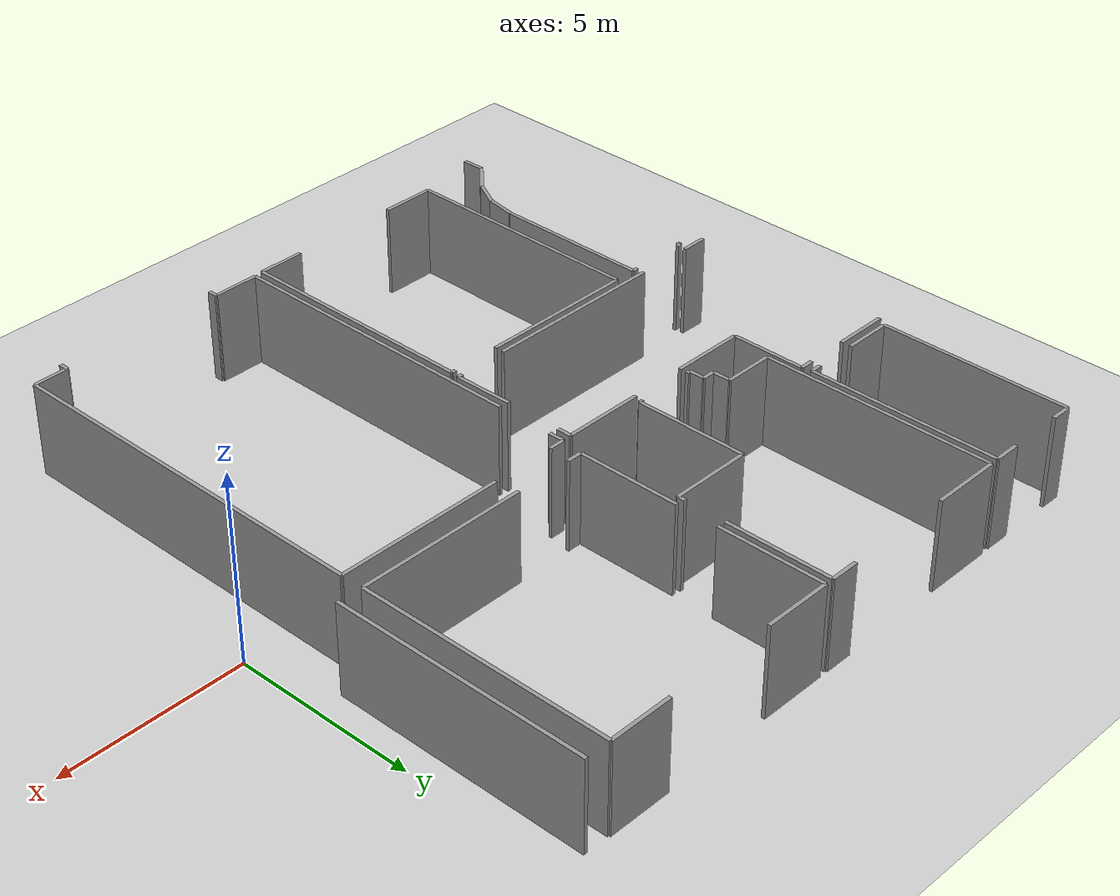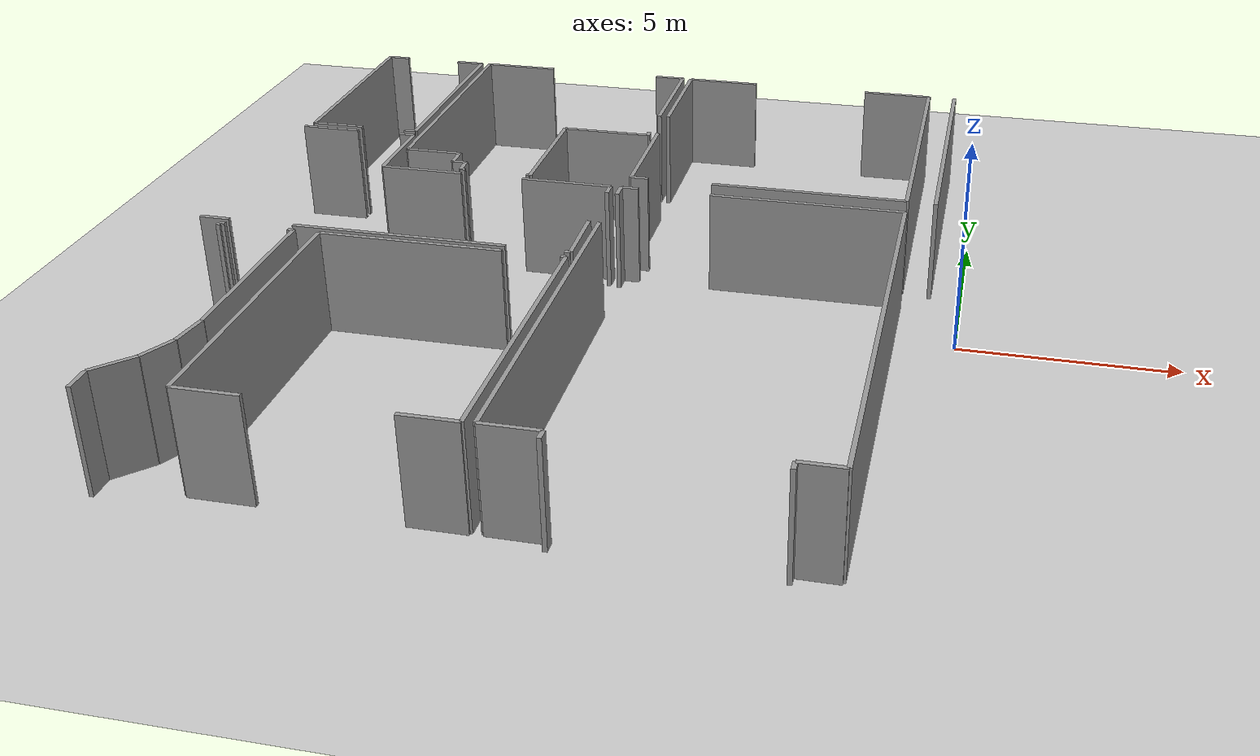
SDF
<sdf version="1.6">
 <world name="default">
  <model name="ground_plane">
   <static>1</static>
   <link name="link">
    <collision name="collision">
     <geometry><plane><normal>0 0 1</normal><size>100 100</size></plane></geometry>
     <surface><friction><ode><mu>100</mu><mu2>50</mu2></ode></friction></surface>
    </collision>
    <visual name="visual">
     <cast_shadows>0</cast_shadows>
     <geometry><plane><normal>0 0 1</normal><size>100 100</size></plane></geometry>
     <material>
      <script><uri>file://media/materials/scripts/gazebo.material</uri><name>Gazebo/Grey</name></script>
     </material>
    </visual>
   </link>
  </model>
  <model name="0510034870_A-40">
   <static>1</static>
   <link name="Wall_57">
    <collision name="Wall_57_Collision">
     <geometry><box><size>0.109804319816 0.1 2.5</size></box></geometry>
     <pose>0.0549021599081 0 1.25 0 0 0</pose>
    </collision>
    <visual name="Wall_57_Visual">
     <pose>0.0549021599081 0 1.25 0 0 0</pose>
     <geometry><box><size>0.109804319816 0.1 2.5</size></box></geometry>
     <material>
      <script><uri>file://media/materials/scripts/gazebo.material</uri><name>Gazebo/Grey</name></script>
      <ambient>1 1 1 1</ambient>
     </material>
    </visual>
    <pose>16.9833643282 -11.4414831834 0 0 0 1.57079632679</pose>
   </link>
   <link name="Wall_58">
    <collision name="Wall_58_Collision">
     <geometry><box><size>0.131765183779 0.1 2.5</size></box></geometry>
     <pose>0.0658825918897 0 1.25 0 0 0</pose>
    </collision>
    <visual name="Wall_58_Visual">
     <pose>0.0658825918897 0 1.25 0 0 0</pose>
     <geometry><box><size>0.131765183779 0.1 2.5</size></box></geometry>
     <material>
      <script><uri>file://media/materials/scripts/gazebo.material</uri><name>Gazebo/Grey</name></script>
      <ambient>1 1 1 1</ambient>
     </material>
    </visual>
    <pose>16.9833643282 -11.3316788636 0 0 0 0.0</pose>
   </link>
   <link name="Wall_59">
    <collision name="Wall_59_Collision">
     <geometry><box><size>0.14522097326 0.1 2.5</size></box></geometry>
     <pose>0.0726104866299 0 1.25 0 0 0</pose>
    </collision>
    <visual name="Wall_59_Visual">
     <pose>0.0726104866299 0 1.25 0 0 0</pose>
     <geometry><box><size>0.14522097326 0.1 2.5</size></box></geometry>
     <material>
      <script><uri>file://media/materials/scripts/gazebo.material</uri><name>Gazebo/Grey</name></script>
      <ambient>1 1 1 1</ambient>
     </material>
    </visual>
    <pose>18.6419807938 -11.3316788636 0 0 0 0.0</pose>
   </link>
   <link name="Wall_60">
    <collision name="Wall_60_Collision">
     <geometry><box><size>4.24771346785 0.1 2.5</size></box></geometry>
     <pose>2.12385673392 0 1.25 0 0 0</pose>
    </collision>
    <visual name="Wall_60_Visual">
     <pose>2.12385673392 0 1.25 0 0 0</pose>
     <geometry><box><size>4.24771346785 0.1 2.5</size></box></geometry>
     <material>
      <script><uri>file://media/materials/scripts/gazebo.material</uri><name>Gazebo/Grey</name></script>
      <ambient>1 1 1 1</ambient>
     </material>
    </visual>
    <pose>18.787201767 -11.3316788636 0 0 0 -1.57079632679</pose>
   </link>
   <link name="Wall_61">
    <collision name="Wall_61_Collision">
     <geometry><box><size>0.838932116164 0.1 2.5</size></box></geometry>
     <pose>0.419466058082 0 1.25 0 0 0</pose>
    </collision>
    <visual name="Wall_61_Visual">
     <pose>0.419466058082 0 1.25 0 0 0</pose>
     <geometry><box><size>0.838932116164 0.1 2.5</size></box></geometry>
     <material>
      <script><uri>file://media/materials/scripts/gazebo.material</uri><name>Gazebo/Grey</name></script>
      <ambient>1 1 1 1</ambient>
     </material>
    </visual>
    <pose>18.787201767 -15.5793923315 0 0 0 -1.72636770612</pose>
   </link>
   <link name="Wall_62">
    <collision name="Wall_62_Collision">
     <geometry><box><size>0.819879496161 0.1 2.5</size></box></geometry>
     <pose>0.409939748081 0 1.25 0 0 0</pose>
    </collision>
    <visual name="Wall_62_Visual">
     <pose>0.409939748081 0 1.25 0 0 0</pose>
     <geometry><box><size>0.819879496161 0.1 2.5</size></box></geometry>
     <material>
      <script><uri>file://media/materials/scripts/gazebo.material</uri><name>Gazebo/Grey</name></script>
      <ambient>1 1 1 1</ambient>
     </material>
    </visual>
    <pose>18.657213763 -16.4081927986 0 0 0 -2.0584038878</pose>
   </link>
   <link name="Wall_63">
    <collision name="Wall_63_Collision">
     <geometry><box><size>0.989534600481 0.1 2.5</size></box></geometry>
     <pose>0.494767300241 0 1.25 0 0 0</pose>
    </collision>
    <visual name="Wall_63_Visual">
     <pose>0.494767300241 0 1.25 0 0 0</pose>
     <geometry><box><size>0.989534600481 0.1 2.5</size></box></geometry>
     <material>
      <script><uri>file://media/materials/scripts/gazebo.material</uri><name>Gazebo/Grey</name></script>
      <ambient>1 1 1 1</ambient>
     </material>
    </visual>
    <pose>18.2730890557 -17.1325204852 0 0 0 -2.35220321966</pose>
   </link>
   <link name="Wall_64">
    <collision name="Wall_64_Collision">
     <geometry><box><size>0.602654528715 0.1 2.5</size></box></geometry>
     <pose>0.301327264357 0 1.25 0 0 0</pose>
    </collision>
    <visual name="Wall_64_Visual">
     <pose>0.301327264357 0 1.25 0 0 0</pose>
     <geometry><box><size>0.602654528715 0.1 2.5</size></box></geometry>
     <material>
      <script><uri>file://media/materials/scripts/gazebo.material</uri><name>Gazebo/Grey</name></script>
      <ambient>1 1 1 1</ambient>
     </material>
    </visual>
    <pose>17.5761807138 -17.8350142492 0 0 0 -1.55626185425</pose>
   </link>
   <link name="Wall_65">
    <collision name="Wall_65_Collision">
     <geometry><box><size>0.132526832241 0.1 2.5</size></box></geometry>
     <pose>0.0662634161203 0 1.25 0 0 0</pose>
    </collision>
    <visual name="Wall_65_Visual">
     <pose>0.0662634161203 0 1.25 0 0 0</pose>
     <geometry><box><size>0.132526832241 0.1 2.5</size></box></geometry>
     <material>
      <script><uri>file://media/materials/scripts/gazebo.material</uri><name>Gazebo/Grey</name></script>
      <ambient>1 1 1 1</ambient>
     </material>
    </visual>
    <pose>25.1962196848 -11.0975989032 0 0 0 3.14159265359</pose>
   </link>
   <link name="Wall_66">
    <collision name="Wall_66_Collision">
     <geometry><box><size>5.04884070757 0.1 2.5</size></box></geometry>
     <pose>2.52442035379 0 1.25 0 0 0</pose>
    </collision>
    <visual name="Wall_66_Visual">
     <pose>2.52442035379 0 1.25 0 0 0</pose>
     <geometry><box><size>5.04884070757 0.1 2.5</size></box></geometry>
     <material>
      <script><uri>file://media/materials/scripts/gazebo.material</uri><name>Gazebo/Grey</name></script>
      <ambient>1 1 1 1</ambient>
     </material>
    </visual>
    <pose>23.7084663574 -11.0975989032 0 0 0 3.14159265359</pose>
   </link>
   <link name="Wall_67">
    <collision name="Wall_67_Collision">
     <geometry><box><size>0.717599791816 0.1 2.5</size></box></geometry>
     <pose>0.358799895908 0 1.25 0 0 0</pose>
    </collision>
    <visual name="Wall_67_Visual">
     <pose>0.358799895908 0 1.25 0 0 0</pose>
     <geometry><box><size>0.717599791816 0.1 2.5</size></box></geometry>
     <material>
      <script><uri>file://media/materials/scripts/gazebo.material</uri><name>Gazebo/Grey</name></script>
      <ambient>1 1 1 1</ambient>
     </material>
    </visual>
    <pose>17.0998965428 -11.0975989032 0 0 0 3.14159265359</pose>
   </link>
   <link name="Wall_69">
    <collision name="Wall_69_Collision">
     <geometry><box><size>1.49041909707 0.1 2.5</size></box></geometry>
     <pose>0.745209548533 0 1.25 0 0 0</pose>
    </collision>
    <visual name="Wall_69_Visual">
     <pose>0.745209548533 0 1.25 0 0 0</pose>
     <geometry><box><size>1.49041909707 0.1 2.5</size></box></geometry>
     <material>
      <script><uri>file://media/materials/scripts/gazebo.material</uri><name>Gazebo/Grey</name></script>
      <ambient>1 1 1 1</ambient>
     </material>
    </visual>
    <pose>16.3822967509 -5.5087494367 0 0 0 0.0</pose>
   </link>
   <link name="Wall_70">
    <collision name="Wall_70_Collision">
     <geometry><box><size>0.367241499686 0.1 2.5</size></box></geometry>
     <pose>0.183620749843 0 1.25 0 0 0</pose>
    </collision>
    <visual name="Wall_70_Visual">
     <pose>0.183620749843 0 1.25 0 0 0</pose>
     <geometry><box><size>0.367241499686 0.1 2.5</size></box></geometry>
     <material>
      <script><uri>file://media/materials/scripts/gazebo.material</uri><name>Gazebo/Grey</name></script>
      <ambient>1 1 1 1</ambient>
     </material>
    </visual>
    <pose>19.0255977354 -5.5087494367 0 0 0 0.0</pose>
   </link>
   <link name="Wall_71">
    <collision name="Wall_71_Collision">
     <geometry><box><size>2.04096399307 0.1 2.5</size></box></geometry>
     <pose>1.02048199653 0 1.25 0 0 0</pose>
    </collision>
    <visual name="Wall_71_Visual">
     <pose>1.02048199653 0 1.25 0 0 0</pose>
     <geometry><box><size>2.04096399307 0.1 2.5</size></box></geometry>
     <material>
      <script><uri>file://media/materials/scripts/gazebo.material</uri><name>Gazebo/Grey</name></script>
      <ambient>1 1 1 1</ambient>
     </material>
    </visual>
    <pose>19.3928392351 -5.5087494367 0 0 0 -1.57079632679</pose>
   </link>
   <link name="Wall_72">
    <collision name="Wall_72_Collision">
     <geometry><box><size>2.0115135859 0.1 2.5</size></box></geometry>
     <pose>1.00575679295 0 1.25 0 0 0</pose>
    </collision>
    <visual name="Wall_72_Visual">
     <pose>1.00575679295 0 1.25 0 0 0</pose>
     <geometry><box><size>2.0115135859 0.1 2.5</size></box></geometry>
     <material>
      <script><uri>file://media/materials/scripts/gazebo.material</uri><name>Gazebo/Grey</name></script>
      <ambient>1 1 1 1</ambient>
     </material>
    </visual>
    <pose>19.3928392351 -7.54971342977 0 0 0 0.0</pose>
   </link>
   <link name="Wall_73">
    <collision name="Wall_73_Collision">
     <geometry><box><size>2.21360431093 0.1 2.5</size></box></geometry>
     <pose>1.10680215547 0 1.25 0 0 0</pose>
    </collision>
    <visual name="Wall_73_Visual">
     <pose>1.10680215547 0 1.25 0 0 0</pose>
     <geometry><box><size>2.21360431093 0.1 2.5</size></box></geometry>
     <material>
      <script><uri>file://media/materials/scripts/gazebo.material</uri><name>Gazebo/Grey</name></script>
      <ambient>1 1 1 1</ambient>
     </material>
    </visual>
    <pose>22.9532919081 -7.54971342977 0 0 0 0.0</pose>
   </link>
   <link name="Wall_74">
    <collision name="Wall_74_Collision">
     <geometry><box><size>0.375873515579 0.1 2.5</size></box></geometry>
     <pose>0.187936757789 0 1.25 0 0 0</pose>
    </collision>
    <visual name="Wall_74_Visual">
     <pose>0.187936757789 0 1.25 0 0 0</pose>
     <geometry><box><size>0.375873515579 0.1 2.5</size></box></geometry>
     <material>
      <script><uri>file://media/materials/scripts/gazebo.material</uri><name>Gazebo/Grey</name></script>
      <ambient>1 1 1 1</ambient>
     </material>
    </visual>
    <pose>25.1668962191 -7.54971342977 0 0 0 -1.57079632679</pose>
   </link>
   <link name="Wall_75">
    <collision name="Wall_75_Collision">
     <geometry><box><size>1.61178796726 0.1 2.5</size></box></geometry>
     <pose>0.805893983628 0 1.25 0 0 0</pose>
    </collision>
    <visual name="Wall_75_Visual">
     <pose>0.805893983628 0 1.25 0 0 0</pose>
     <geometry><box><size>1.61178796726 0.1 2.5</size></box></geometry>
     <material>
      <script><uri>file://media/materials/scripts/gazebo.material</uri><name>Gazebo/Grey</name></script>
      <ambient>1 1 1 1</ambient>
     </material>
    </visual>
    <pose>25.1668962191 -9.48607770084 0 0 0 -1.55260219443</pose>
   </link>
   <link name="Wall_76">
    <collision name="Wall_76_Collision">
     <geometry><box><size>0.308086802536 0.1 2.5</size></box></geometry>
     <pose>0.154043401268 0 1.25 0 0 0</pose>
    </collision>
    <visual name="Wall_76_Visual">
     <pose>0.154043401268 0 1.25 0 0 0</pose>
     <geometry><box><size>0.308086802536 0.1 2.5</size></box></geometry>
     <material>
      <script><uri>file://media/materials/scripts/gazebo.material</uri><name>Gazebo/Grey</name></script>
      <ambient>1 1 1 1</ambient>
     </material>
    </visual>
    <pose>19.3387621943 -5.24750401452 0 0 0 3.14159265359</pose>
   </link>
   <link name="Wall_77">
    <collision name="Wall_77_Collision">
     <geometry><box><size>1.32095231446 0.1 2.5</size></box></geometry>
     <pose>0.66047615723 0 1.25 0 0 0</pose>
    </collision>
    <visual name="Wall_77_Visual">
     <pose>0.66047615723 0 1.25 0 0 0</pose>
     <geometry><box><size>1.32095231446 0.1 2.5</size></box></geometry>
     <material>
      <script><uri>file://media/materials/scripts/gazebo.material</uri><name>Gazebo/Grey</name></script>
      <ambient>1 1 1 1</ambient>
     </material>
    </visual>
    <pose>17.872715848 -5.24750401452 0 0 0 3.14159265359</pose>
   </link>
   <link name="Wall_78">
    <collision name="Wall_78_Collision">
     <geometry><box><size>5.21970384569 0.1 2.5</size></box></geometry>
     <pose>2.60985192285 0 1.25 0 0 0</pose>
    </collision>
    <visual name="Wall_78_Visual">
     <pose>2.60985192285 0 1.25 0 0 0</pose>
     <geometry><box><size>5.21970384569 0.1 2.5</size></box></geometry>
     <material>
      <script><uri>file://media/materials/scripts/gazebo.material</uri><name>Gazebo/Grey</name></script>
      <ambient>1 1 1 1</ambient>
     </material>
    </visual>
    <pose>16.5517635335 -5.24750401452 0 0 0 1.57079632679</pose>
   </link>
   <link name="Wall_79">
    <collision name="Wall_79_Collision">
     <geometry><box><size>0.566158689457 0.1 2.5</size></box></geometry>
     <pose>0.283079344728 0 1.25 0 0 0</pose>
    </collision>
    <visual name="Wall_79_Visual">
     <pose>0.283079344728 0 1.25 0 0 0</pose>
     <geometry><box><size>0.566158689457 0.1 2.5</size></box></geometry>
     <material>
      <script><uri>file://media/materials/scripts/gazebo.material</uri><name>Gazebo/Grey</name></script>
      <ambient>1 1 1 1</ambient>
     </material>
    </visual>
    <pose>16.5517635335 -0.0278001688321 0 0 0 0.0</pose>
   </link>
   <link name="Wall_80">
    <collision name="Wall_80_Collision">
     <geometry><box><size>0.715822612073 0.1 2.5</size></box></geometry>
     <pose>0.357911306037 0 1.25 0 0 0</pose>
    </collision>
    <visual name="Wall_80_Visual">
     <pose>0.357911306037 0 1.25 0 0 0</pose>
     <geometry><box><size>0.715822612073 0.1 2.5</size></box></geometry>
     <material>
      <script><uri>file://media/materials/scripts/gazebo.material</uri><name>Gazebo/Grey</name></script>
      <ambient>1 1 1 1</ambient>
     </material>
    </visual>
    <pose>18.6250975862 -0.0278001688321 0 0 0 0.0</pose>
   </link>
   <link name="Wall_81">
    <collision name="Wall_81_Collision">
     <geometry><box><size>5.21970429179 0.1 2.5</size></box></geometry>
     <pose>2.60985214589 0 1.25 0 0 0</pose>
    </collision>
    <visual name="Wall_81_Visual">
     <pose>2.60985214589 0 1.25 0 0 0</pose>
     <geometry><box><size>5.21970429179 0.1 2.5</size></box></geometry>
     <material>
      <script><uri>file://media/materials/scripts/gazebo.material</uri><name>Gazebo/Grey</name></script>
      <ambient>1 1 1 1</ambient>
     </material>
    </visual>
    <pose>19.3409201983 -0.0278001688321 0 0 0 -1.57120976095</pose>
   </link>
   <link name="Wall_82">
    <collision name="Wall_82_Collision">
     <geometry><box><size>2.20357593953 0.1 2.5</size></box></geometry>
     <pose>1.10178796976 0 1.25 0 0 0</pose>
    </collision>
    <visual name="Wall_82_Visual">
     <pose>1.10178796976 0 1.25 0 0 0</pose>
     <geometry><box><size>2.20357593953 0.1 2.5</size></box></geometry>
     <material>
      <script><uri>file://media/materials/scripts/gazebo.material</uri><name>Gazebo/Grey</name></script>
      <ambient>1 1 1 1</ambient>
     </material>
    </visual>
    <pose>25.2855864376 -4.26104231592 0 0 0 3.14159265359</pose>
   </link>
   <link name="Wall_83">
    <collision name="Wall_83_Collision">
     <geometry><box><size>3.05611445038 0.1 2.5</size></box></geometry>
     <pose>1.52805722519 0 1.25 0 0 0</pose>
    </collision>
    <visual name="Wall_83_Visual">
     <pose>1.52805722519 0 1.25 0 0 0</pose>
     <geometry><box><size>3.05611445038 0.1 2.5</size></box></geometry>
     <material>
      <script><uri>file://media/materials/scripts/gazebo.material</uri><name>Gazebo/Grey</name></script>
      <ambient>1 1 1 1</ambient>
     </material>
    </visual>
    <pose>23.0820104981 -4.26104231592 0 0 0 -1.57079632679</pose>
   </link>
   <link name="Wall_84">
    <collision name="Wall_84_Collision">
     <geometry><box><size>0.101045362513 0.1 2.5</size></box></geometry>
     <pose>0.0505226812565 0 1.25 0 0 0</pose>
    </collision>
    <visual name="Wall_84_Visual">
     <pose>0.0505226812565 0 1.25 0 0 0</pose>
     <geometry><box><size>0.101045362513 0.1 2.5</size></box></geometry>
     <material>
      <script><uri>file://media/materials/scripts/gazebo.material</uri><name>Gazebo/Grey</name></script>
      <ambient>1 1 1 1</ambient>
     </material>
    </visual>
    <pose>23.0820104981 -7.31715676629 0 0 0 3.14159265359</pose>
   </link>
   <link name="Wall_85">
    <collision name="Wall_85_Collision">
     <geometry><box><size>0.115135859044 0.1 2.5</size></box></geometry>
     <pose>0.0575679295221 0 1.25 0 0 0</pose>
    </collision>
    <visual name="Wall_85_Visual">
     <pose>0.0575679295221 0 1.25 0 0 0</pose>
     <geometry><box><size>0.115135859044 0.1 2.5</size></box></geometry>
     <material>
      <script><uri>file://media/materials/scripts/gazebo.material</uri><name>Gazebo/Grey</name></script>
      <ambient>1 1 1 1</ambient>
     </material>
    </visual>
    <pose>21.4240287395 -7.31715676629 0 0 0 3.14159265359</pose>
   </link>
   <link name="Wall_86">
    <collision name="Wall_86_Collision">
     <geometry><box><size>0.421445481838 0.1 2.5</size></box></geometry>
     <pose>0.210722740919 0 1.25 0 0 0</pose>
    </collision>
    <visual name="Wall_86_Visual">
     <pose>0.210722740919 0 1.25 0 0 0</pose>
     <geometry><box><size>0.421445481838 0.1 2.5</size></box></geometry>
     <material>
      <script><uri>file://media/materials/scripts/gazebo.material</uri><name>Gazebo/Grey</name></script>
      <ambient>1 1 1 1</ambient>
     </material>
    </visual>
    <pose>21.3088928805 -7.31715676629 0 0 0 1.57079632679</pose>
   </link>
   <link name="Wall_87">
    <collision name="Wall_87_Collision">
     <geometry><box><size>0.345661459953 0.1 2.5</size></box></geometry>
     <pose>0.172830729977 0 1.25 0 0 0</pose>
    </collision>
    <visual name="Wall_87_Visual">
     <pose>0.172830729977 0 1.25 0 0 0</pose>
     <geometry><box><size>0.345661459953 0.1 2.5</size></box></geometry>
     <material>
      <script><uri>file://media/materials/scripts/gazebo.material</uri><name>Gazebo/Grey</name></script>
      <ambient>1 1 1 1</ambient>
     </material>
    </visual>
    <pose>21.3088928805 -6.89571128446 0 0 0 3.14159265359</pose>
   </link>
   <link name="Wall_88">
    <collision name="Wall_88_Collision">
     <geometry><box><size>0.499133624875 0.1 2.5</size></box></geometry>
     <pose>0.249566812438 0 1.25 0 0 0</pose>
    </collision>
    <visual name="Wall_88_Visual">
     <pose>0.249566812438 0 1.25 0 0 0</pose>
     <geometry><box><size>0.499133624875 0.1 2.5</size></box></geometry>
     <material>
      <script><uri>file://media/materials/scripts/gazebo.material</uri><name>Gazebo/Grey</name></script>
      <ambient>1 1 1 1</ambient>
     </material>
    </visual>
    <pose>20.9632314205 -6.89571128446 0 0 0 1.57079632679</pose>
   </link>
   <link name="Wall_89">
    <collision name="Wall_89_Collision">
     <geometry><box><size>1.37832983187 0.1 2.5</size></box></geometry>
     <pose>0.689164915933 0 1.25 0 0 0</pose>
    </collision>
    <visual name="Wall_89_Visual">
     <pose>0.689164915933 0 1.25 0 0 0</pose>
     <geometry><box><size>1.37832983187 0.1 2.5</size></box></geometry>
     <material>
      <script><uri>file://media/materials/scripts/gazebo.material</uri><name>Gazebo/Grey</name></script>
      <ambient>1 1 1 1</ambient>
     </material>
    </visual>
    <pose>20.9632314205 -6.39657765958 0 0 0 3.14159265359</pose>
   </link>
   <link name="Wall_90">
    <collision name="Wall_90_Collision">
     <geometry><box><size>6.37487067844 0.1 2.5</size></box></geometry>
     <pose>3.18743533922 0 1.25 0 0 0</pose>
    </collision>
    <visual name="Wall_90_Visual">
     <pose>3.18743533922 0 1.25 0 0 0</pose>
     <geometry><box><size>6.37487067844 0.1 2.5</size></box></geometry>
     <material>
      <script><uri>file://media/materials/scripts/gazebo.material</uri><name>Gazebo/Grey</name></script>
      <ambient>1 1 1 1</ambient>
     </material>
    </visual>
    <pose>19.5849015887 -6.39657765958 0 0 0 1.57079632679</pose>
   </link>
   <link name="Wall_91">
    <collision name="Wall_91_Collision">
     <geometry><box><size>1.90945269211 0.1 2.5</size></box></geometry>
     <pose>0.954726346055 0 1.25 0 0 0</pose>
    </collision>
    <visual name="Wall_91_Visual">
     <pose>0.954726346055 0 1.25 0 0 0</pose>
     <geometry><box><size>1.90945269211 0.1 2.5</size></box></geometry>
     <material>
      <script><uri>file://media/materials/scripts/gazebo.material</uri><name>Gazebo/Grey</name></script>
      <ambient>1 1 1 1</ambient>
     </material>
    </visual>
    <pose>19.5849015887 -0.0217069811429 0 0 0 0.0</pose>
   </link>
   <link name="Wall_92">
    <collision name="Wall_92_Collision">
     <geometry><box><size>0.769391887174 0.1 2.5</size></box></geometry>
     <pose>0.384695943587 0 1.25 0 0 0</pose>
    </collision>
    <visual name="Wall_92_Visual">
     <pose>0.384695943587 0 1.25 0 0 0</pose>
     <geometry><box><size>0.769391887174 0.1 2.5</size></box></geometry>
     <material>
      <script><uri>file://media/materials/scripts/gazebo.material</uri><name>Gazebo/Grey</name></script>
      <ambient>1 1 1 1</ambient>
     </material>
    </visual>
    <pose>24.5064200618 -0.0217069811429 0 0 0 0.0</pose>
   </link>
   <link name="Wall_93">
    <collision name="Wall_93_Collision">
     <geometry><box><size>2.90023039866 0.1 2.5</size></box></geometry>
     <pose>1.45011519933 0 1.25 0 0 0</pose>
    </collision>
    <visual name="Wall_93_Visual">
     <pose>1.45011519933 0 1.25 0 0 0</pose>
     <geometry><box><size>2.90023039866 0.1 2.5</size></box></geometry>
     <material>
      <script><uri>file://media/materials/scripts/gazebo.material</uri><name>Gazebo/Grey</name></script>
      <ambient>1 1 1 1</ambient>
     </material>
    </visual>
    <pose>25.275811949 -0.0217069811429 0 0 0 -1.57079632679</pose>
   </link>
   <link name="Wall_94">
    <collision name="Wall_94_Collision">
     <geometry><box><size>0.201185836339 0.1 2.5</size></box></geometry>
     <pose>0.100592918169 0 1.25 0 0 0</pose>
    </collision>
    <visual name="Wall_94_Visual">
     <pose>0.100592918169 0 1.25 0 0 0</pose>
     <geometry><box><size>0.201185836339 0.1 2.5</size></box></geometry>
     <material>
      <script><uri>file://media/materials/scripts/gazebo.material</uri><name>Gazebo/Grey</name></script>
      <ambient>1 1 1 1</ambient>
     </material>
    </visual>
    <pose>25.275811949 -4.06009406358 0 0 0 -1.52219281571</pose>
   </link>
   <link name="Wall_95">
    <collision name="Wall_95_Collision">
     <geometry><box><size>4.65405292187 0.1 2.5</size></box></geometry>
     <pose>2.32702646094 0 1.25 0 0 0</pose>
    </collision>
    <visual name="Wall_95_Visual">
     <pose>2.32702646094 0 1.25 0 0 0</pose>
     <geometry><box><size>4.65405292187 0.1 2.5</size></box></geometry>
     <material>
      <script><uri>file://media/materials/scripts/gazebo.material</uri><name>Gazebo/Grey</name></script>
      <ambient>1 1 1 1</ambient>
     </material>
    </visual>
    <pose>32.1635259246 -6.91678355855 0 0 0 3.14159265359</pose>
   </link>
   <link name="Wall_96">
    <collision name="Wall_96_Collision">
     <geometry><box><size>0.422334071709 0.1 2.5</size></box></geometry>
     <pose>0.211167035855 0 1.25 0 0 0</pose>
    </collision>
    <visual name="Wall_96_Visual">
     <pose>0.211167035855 0 1.25 0 0 0</pose>
     <geometry><box><size>0.422334071709 0.1 2.5</size></box></geometry>
     <material>
      <script><uri>file://media/materials/scripts/gazebo.material</uri><name>Gazebo/Grey</name></script>
      <ambient>1 1 1 1</ambient>
     </material>
    </visual>
    <pose>25.9353995164 -6.91678355855 0 0 0 3.14159265359</pose>
   </link>
   <link name="Wall_97">
    <collision name="Wall_97_Collision">
     <geometry><box><size>2.82381166972 0.1 2.5</size></box></geometry>
     <pose>1.41190583486 0 1.25 0 0 0</pose>
    </collision>
    <visual name="Wall_97_Visual">
     <pose>1.41190583486 0 1.25 0 0 0</pose>
     <geometry><box><size>2.82381166972 0.1 2.5</size></box></geometry>
     <material>
      <script><uri>file://media/materials/scripts/gazebo.material</uri><name>Gazebo/Grey</name></script>
      <ambient>1 1 1 1</ambient>
     </material>
    </visual>
    <pose>25.5130654446 -6.91678355855 0 0 0 1.57079632679</pose>
   </link>
   <link name="Wall_98">
    <collision name="Wall_98_Collision">
     <geometry><box><size>2.91165512558 0.1 2.5</size></box></geometry>
     <pose>1.45582756279 0 1.25 0 0 0</pose>
    </collision>
    <visual name="Wall_98_Visual">
     <pose>1.45582756279 0 1.25 0 0 0</pose>
     <geometry><box><size>2.91165512558 0.1 2.5</size></box></geometry>
     <material>
      <script><uri>file://media/materials/scripts/gazebo.material</uri><name>Gazebo/Grey</name></script>
      <ambient>1 1 1 1</ambient>
     </material>
    </visual>
    <pose>25.5130654446 -2.93945529441 0 0 0 1.57079632679</pose>
   </link>
   <link name="Wall_99">
    <collision name="Wall_99_Collision">
     <geometry><box><size>1.86058024919 0.1 2.5</size></box></geometry>
     <pose>0.930290124593 0 1.25 0 0 0</pose>
    </collision>
    <visual name="Wall_99_Visual">
     <pose>0.930290124593 0 1.25 0 0 0</pose>
     <geometry><box><size>1.86058024919 0.1 2.5</size></box></geometry>
     <material>
      <script><uri>file://media/materials/scripts/gazebo.material</uri><name>Gazebo/Grey</name></script>
      <ambient>1 1 1 1</ambient>
     </material>
    </visual>
    <pose>25.5130654446 -0.0278001688321 0 0 0 0.0</pose>
   </link>
   <link name="Wall_100">
    <collision name="Wall_100_Collision">
     <geometry><box><size>1.74189003066 0.1 2.5</size></box></geometry>
     <pose>0.870945015328 0 1.25 0 0 0</pose>
    </collision>
    <visual name="Wall_100_Visual">
     <pose>0.870945015328 0 1.25 0 0 0</pose>
     <geometry><box><size>1.74189003066 0.1 2.5</size></box></geometry>
     <material>
      <script><uri>file://media/materials/scripts/gazebo.material</uri><name>Gazebo/Grey</name></script>
      <ambient>1 1 1 1</ambient>
     </material>
    </visual>
    <pose>30.4093225772 -0.0278001688321 0 0 0 0.0</pose>
   </link>
   <link name="Wall_101">
    <collision name="Wall_101_Collision">
     <geometry><box><size>6.88899439407 0.1 2.5</size></box></geometry>
     <pose>3.44449719704 0 1.25 0 0 0</pose>
    </collision>
    <visual name="Wall_101_Visual">
     <pose>3.44449719704 0 1.25 0 0 0</pose>
     <geometry><box><size>6.88899439407 0.1 2.5</size></box></geometry>
     <material>
      <script><uri>file://media/materials/scripts/gazebo.material</uri><name>Gazebo/Grey</name></script>
      <ambient>1 1 1 1</ambient>
     </material>
    </visual>
    <pose>32.1512126078 -0.0278001688321 0 0 0 -1.56900893626</pose>
   </link>
   <link name="Wall_102">
    <collision name="Wall_102_Collision">
     <geometry><box><size>0.935050427475 0.1 2.5</size></box></geometry>
     <pose>0.467525213738 0 1.25 0 0 0</pose>
    </collision>
    <visual name="Wall_102_Visual">
     <pose>0.467525213738 0 1.25 0 0 0</pose>
     <geometry><box><size>0.935050427475 0.1 2.5</size></box></geometry>
     <material>
      <script><uri>file://media/materials/scripts/gazebo.material</uri><name>Gazebo/Grey</name></script>
      <ambient>1 1 1 1</ambient>
     </material>
    </visual>
    <pose>32.1647953387 -18.0108281023 0 0 0 3.14159265359</pose>
   </link>
   <link name="Wall_103">
    <collision name="Wall_103_Collision">
     <geometry><box><size>0.243727507569 0.1 2.5</size></box></geometry>
     <pose>0.121863753784 0 1.25 0 0 0</pose>
    </collision>
    <visual name="Wall_103_Visual">
     <pose>0.121863753784 0 1.25 0 0 0</pose>
     <geometry><box><size>0.243727507569 0.1 2.5</size></box></geometry>
     <material>
      <script><uri>file://media/materials/scripts/gazebo.material</uri><name>Gazebo/Grey</name></script>
      <ambient>1 1 1 1</ambient>
     </material>
    </visual>
    <pose>31.2297449112 -18.0108281023 0 0 0 -1.57079632679</pose>
   </link>
   <link name="Wall_104">
    <collision name="Wall_104_Collision">
     <geometry><box><size>0.258706593972 0.1 2.5</size></box></geometry>
     <pose>0.129353296986 0 1.25 0 0 0</pose>
    </collision>
    <visual name="Wall_104_Visual">
     <pose>0.129353296986 0 1.25 0 0 0</pose>
     <geometry><box><size>0.258706593972 0.1 2.5</size></box></geometry>
     <material>
      <script><uri>file://media/materials/scripts/gazebo.material</uri><name>Gazebo/Grey</name></script>
      <ambient>1 1 1 1</ambient>
     </material>
    </visual>
    <pose>26.685750192 -18.2545556099 0 0 0 1.57079632679</pose>
   </link>
   <link name="Wall_105">
    <collision name="Wall_105_Collision">
     <geometry><box><size>1.26230538295 0.1 2.5</size></box></geometry>
     <pose>0.631152691475 0 1.25 0 0 0</pose>
    </collision>
    <visual name="Wall_105_Visual">
     <pose>0.631152691475 0 1.25 0 0 0</pose>
     <geometry><box><size>1.26230538295 0.1 2.5</size></box></geometry>
     <material>
      <script><uri>file://media/materials/scripts/gazebo.material</uri><name>Gazebo/Grey</name></script>
      <ambient>1 1 1 1</ambient>
     </material>
    </visual>
    <pose>26.685750192 -17.9958490159 0 0 0 3.14159265359</pose>
   </link>
   <link name="Wall_106">
    <collision name="Wall_106_Collision">
     <geometry><box><size>8.47968620083 0.1 2.5</size></box></geometry>
     <pose>4.23984310042 0 1.25 0 0 0</pose>
    </collision>
    <visual name="Wall_106_Visual">
     <pose>4.23984310042 0 1.25 0 0 0</pose>
     <geometry><box><size>8.47968620083 0.1 2.5</size></box></geometry>
     <material>
      <script><uri>file://media/materials/scripts/gazebo.material</uri><name>Gazebo/Grey</name></script>
      <ambient>1 1 1 1</ambient>
     </material>
    </visual>
    <pose>25.423444809 -17.9958490159 0 0 0 1.57079632679</pose>
   </link>
   <link name="Wall_107">
    <collision name="Wall_107_Collision">
     <geometry><box><size>0.410147696331 0.1 2.5</size></box></geometry>
     <pose>0.205073848165 0 1.25 0 0 0</pose>
    </collision>
    <visual name="Wall_107_Visual">
     <pose>0.205073848165 0 1.25 0 0 0</pose>
     <geometry><box><size>0.410147696331 0.1 2.5</size></box></geometry>
     <material>
      <script><uri>file://media/materials/scripts/gazebo.material</uri><name>Gazebo/Grey</name></script>
      <ambient>1 1 1 1</ambient>
     </material>
    </visual>
    <pose>25.423444809 -7.94830945777 0 0 0 1.57079632679</pose>
   </link>
   <link name="Wall_108">
    <collision name="Wall_108_Collision">
     <geometry><box><size>0.42284183735 0.1 2.5</size></box></geometry>
     <pose>0.211420918675 0 1.25 0 0 0</pose>
    </collision>
    <visual name="Wall_108_Visual">
     <pose>0.211420918675 0 1.25 0 0 0</pose>
     <geometry><box><size>0.42284183735 0.1 2.5</size></box></geometry>
     <material>
      <script><uri>file://media/materials/scripts/gazebo.material</uri><name>Gazebo/Grey</name></script>
      <ambient>1 1 1 1</ambient>
     </material>
    </visual>
    <pose>25.423444809 -7.53816176144 0 0 0 0.0</pose>
   </link>
   <link name="Wall_109">
    <collision name="Wall_109_Collision">
     <geometry><box><size>4.59197857229 0.1 2.5</size></box></geometry>
     <pose>2.29598928614 0 1.25 0 0 0</pose>
    </collision>
    <visual name="Wall_109_Visual">
     <pose>2.29598928614 0 1.25 0 0 0</pose>
     <geometry><box><size>4.59197857229 0.1 2.5</size></box></geometry>
     <material>
      <script><uri>file://media/materials/scripts/gazebo.material</uri><name>Gazebo/Grey</name></script>
      <ambient>1 1 1 1</ambient>
     </material>
    </visual>
    <pose>27.5862725559 -7.53816176144 0 0 0 0.0</pose>
   </link>
   <link name="Wall_110">
    <collision name="Wall_110_Collision">
     <geometry><box><size>10.4726749852 0.1 2.5</size></box></geometry>
     <pose>5.23633749259 0 1.25 0 0 0</pose>
    </collision>
    <visual name="Wall_110_Visual">
     <pose>5.23633749259 0 1.25 0 0 0</pose>
     <geometry><box><size>10.4726749852 0.1 2.5</size></box></geometry>
     <material>
      <script><uri>file://media/materials/scripts/gazebo.material</uri><name>Gazebo/Grey</name></script>
      <ambient>1 1 1 1</ambient>
     </material>
    </visual>
    <pose>32.1782511282 -7.53816176144 0 0 0 -1.57208117457</pose>
   </link>
   <link name="Wall_111">
    <collision name="Wall_111_Collision">
     <geometry><box><size>1.26433644551 0.1 2.5</size></box></geometry>
     <pose>0.632168222757 0 1.25 0 0 0</pose>
    </collision>
    <visual name="Wall_111_Visual">
     <pose>0.632168222757 0 1.25 0 0 0</pose>
     <geometry><box><size>1.26433644551 0.1 2.5</size></box></geometry>
     <material>
      <script><uri>file://media/materials/scripts/gazebo.material</uri><name>Gazebo/Grey</name></script>
      <ambient>1 1 1 1</ambient>
     </material>
    </visual>
    <pose>25.1604222071 -18.024664716 0 0 0 3.14159265359</pose>
   </link>
   <link name="Wall_112">
    <collision name="Wall_112_Collision">
     <geometry><box><size>1.46414222516 0.1 2.5</size></box></geometry>
     <pose>0.732071112578 0 1.25 0 0 0</pose>
    </collision>
    <visual name="Wall_112_Visual">
     <pose>0.732071112578 0 1.25 0 0 0</pose>
     <geometry><box><size>1.46414222516 0.1 2.5</size></box></geometry>
     <material>
      <script><uri>file://media/materials/scripts/gazebo.material</uri><name>Gazebo/Grey</name></script>
      <ambient>1 1 1 1</ambient>
     </material>
    </visual>
    <pose>20.8604088783 -18.024664716 0 0 0 3.14159265359</pose>
   </link>
   <link name="Wall_113">
    <collision name="Wall_113_Collision">
     <geometry><box><size>6.68752737174 0.1 2.5</size></box></geometry>
     <pose>3.34376368587 0 1.25 0 0 0</pose>
    </collision>
    <visual name="Wall_113_Visual">
     <pose>3.34376368587 0 1.25 0 0 0</pose>
     <geometry><box><size>6.68752737174 0.1 2.5</size></box></geometry>
     <material>
      <script><uri>file://media/materials/scripts/gazebo.material</uri><name>Gazebo/Grey</name></script>
      <ambient>1 1 1 1</ambient>
     </material>
    </visual>
    <pose>19.3962666531 -18.024664716 0 0 0 1.57079632679</pose>
   </link>
   <link name="Wall_114">
    <collision name="Wall_114_Collision">
     <geometry><box><size>4.3044562782 0.1 2.5</size></box></geometry>
     <pose>2.1522281391 0 1.25 0 0 0</pose>
    </collision>
    <visual name="Wall_114_Visual">
     <pose>2.1522281391 0 1.25 0 0 0</pose>
     <geometry><box><size>4.3044562782 0.1 2.5</size></box></geometry>
     <material>
      <script><uri>file://media/materials/scripts/gazebo.material</uri><name>Gazebo/Grey</name></script>
      <ambient>1 1 1 1</ambient>
     </material>
    </visual>
    <pose>19.3962666531 -11.3371373443 0 0 0 0.0</pose>
   </link>
   <link name="Wall_115">
    <collision name="Wall_115_Collision">
     <geometry><box><size>0.123387050707 0.1 2.5</size></box></geometry>
     <pose>0.0616935253534 0 1.25 0 0 0</pose>
    </collision>
    <visual name="Wall_115_Visual">
     <pose>0.0616935253534 0 1.25 0 0 0</pose>
     <geometry><box><size>0.123387050707 0.1 2.5</size></box></geometry>
     <material>
      <script><uri>file://media/materials/scripts/gazebo.material</uri><name>Gazebo/Grey</name></script>
      <ambient>1 1 1 1</ambient>
     </material>
    </visual>
    <pose>25.0435091683 -11.3371373443 0 0 0 0.0</pose>
   </link>
   <link name="Wall_116">
    <collision name="Wall_116_Collision">
     <geometry><box><size>6.6875305054 0.1 2.5</size></box></geometry>
     <pose>3.3437652527 0 1.25 0 0 0</pose>
    </collision>
    <visual name="Wall_116_Visual">
     <pose>3.3437652527 0 1.25 0 0 0</pose>
     <geometry><box><size>6.6875305054 0.1 2.5</size></box></geometry>
     <material>
      <script><uri>file://media/materials/scripts/gazebo.material</uri><name>Gazebo/Grey</name></script>
      <ambient>1 1 1 1</ambient>
     </material>
    </visual>
    <pose>25.1668962191 -11.3371373443 0 0 0 -1.57176439908</pose>
   </link>
   <link name="Wall_119">
    <collision name="Wall_119_Collision">
     <geometry><box><size>6.94318737187 0.1 2.5</size></box></geometry>
     <pose>3.47159368593 0 1.25 0 0 0</pose>
    </collision>
    <visual name="Wall_119_Visual">
     <pose>3.47159368593 0 1.25 0 0 0</pose>
     <geometry><box><size>6.94318737187 0.1 2.5</size></box></geometry>
     <material>
      <script><uri>file://media/materials/scripts/gazebo.material</uri><name>Gazebo/Grey</name></script>
      <ambient>1 1 1 1</ambient>
     </material>
    </visual>
    <pose>32.8411391722 -6.96425964596 0 0 0 1.57079632679</pose>
   </link>
   <pose>-33.6 9.23760512336 0 0 0 0</pose>
  </model>
 </world>
</sdf>
